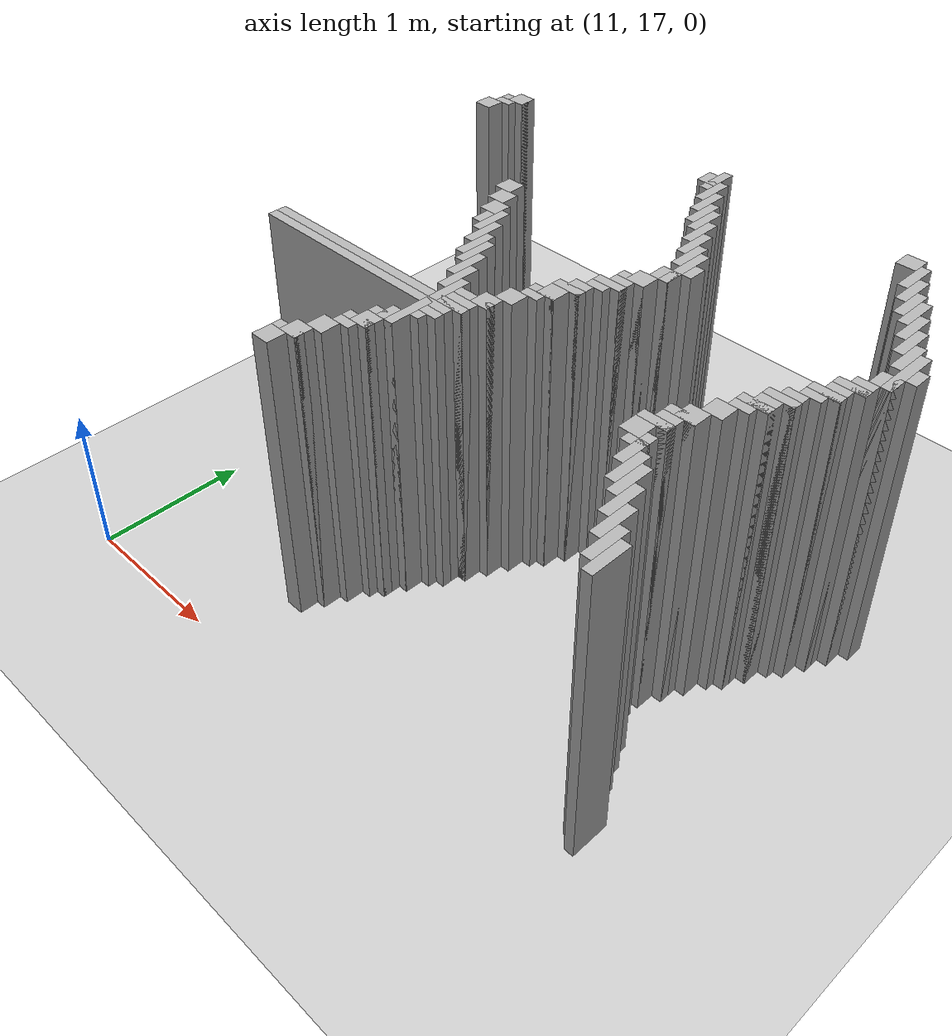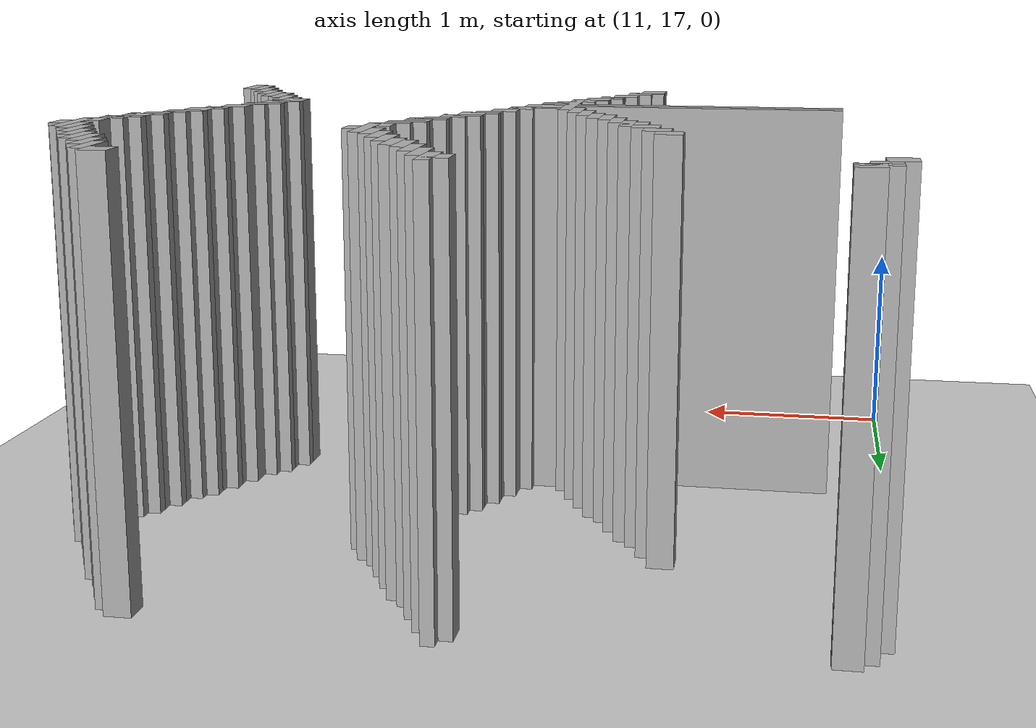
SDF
<sdf version="1.6">
 <world name="slam_world">
  <model name="ground_plane">
   <static>true</static>
   <link name="link">
    <collision name="collision">
     <geometry><plane><normal>0 0 1</normal><size>100 100</size></plane></geometry>
    </collision>
    <visual name="visual">
     <geometry><plane><normal>0 0 1</normal><size>100 100</size></plane></geometry>
     <material>
      <ambient>0.8 0.8 0.8 1</ambient>
      <diffuse>0.8 0.8 0.8 1</diffuse>
      <specular>0.8 0.8 0.8 1</specular>
     </material>
    </visual>
   </link>
  </model>
  <model name="wall_340">
   <static>true</static>
   <pose>12.925531914893616 20.5531914893617 1.0 0 0 0</pose>
   <link name="link">
    <collision name="collision">
     <geometry><box><size>0.06382978723404255 0.2553191489361702 2.0</size></box></geometry>
    </collision>
    <visual name="visual">
     <geometry><box><size>0.06382978723404255 0.2553191489361702 2.0</size></box></geometry>
     <material><ambient>0.5 0.5 0.5 1</ambient><diffuse>0.7 0.7 0.7 1</diffuse></material>
    </visual>
   </link>
  </model>
  <model name="wall_346">
   <static>true</static>
   <pose>11.234042553191488 20.5531914893617 1.0 0 0 0</pose>
   <link name="link">
    <collision name="collision">
     <geometry><box><size>0.1276595744680851 0.1276595744680851 2.0</size></box></geometry>
    </collision>
    <visual name="visual">
     <geometry><box><size>0.1276595744680851 0.1276595744680851 2.0</size></box></geometry>
     <material><ambient>0.5 0.5 0.5 1</ambient><diffuse>0.7 0.7 0.7 1</diffuse></material>
    </visual>
   </link>
  </model>
  <model name="wall_347">
   <static>true</static>
   <pose>12.893617021276595 20.5531914893617 1.0 0 0 0</pose>
   <link name="link">
    <collision name="collision">
     <geometry><box><size>0.1276595744680851 0.1276595744680851 2.0</size></box></geometry>
    </collision>
    <visual name="visual">
     <geometry><box><size>0.1276595744680851 0.1276595744680851 2.0</size></box></geometry>
     <material><ambient>0.5 0.5 0.5 1</ambient><diffuse>0.7 0.7 0.7 1</diffuse></material>
    </visual>
   </link>
  </model>
  <model name="wall_348">
   <static>true</static>
   <pose>14.297872340425531 20.5531914893617 1.0 0 0 0</pose>
   <link name="link">
    <collision name="collision">
     <geometry><box><size>0.1276595744680851 0.1276595744680851 2.0</size></box></geometry>
    </collision>
    <visual name="visual">
     <geometry><box><size>0.1276595744680851 0.1276595744680851 2.0</size></box></geometry>
     <material><ambient>0.5 0.5 0.5 1</ambient><diffuse>0.7 0.7 0.7 1</diffuse></material>
    </visual>
   </link>
  </model>
  <model name="wall_354">
   <static>true</static>
   <pose>11.202127659574467 20.52127659574468 1.0 0 0 0</pose>
   <link name="link">
    <collision name="collision">
     <geometry><box><size>0.19148936170212766 0.06382978723404255 2.0</size></box></geometry>
    </collision>
    <visual name="visual">
     <geometry><box><size>0.19148936170212766 0.06382978723404255 2.0</size></box></geometry>
     <material><ambient>0.5 0.5 0.5 1</ambient><diffuse>0.7 0.7 0.7 1</diffuse></material>
    </visual>
   </link>
  </model>
  <model name="wall_355">
   <static>true</static>
   <pose>12.989361702127658 20.425531914893615 1.0 0 0 0</pose>
   <link name="link">
    <collision name="collision">
     <geometry><box><size>0.06382978723404255 0.2553191489361702 2.0</size></box></geometry>
    </collision>
    <visual name="visual">
     <geometry><box><size>0.06382978723404255 0.2553191489361702 2.0</size></box></geometry>
     <material><ambient>0.5 0.5 0.5 1</ambient><diffuse>0.7 0.7 0.7 1</diffuse></material>
    </visual>
   </link>
  </model>
  <model name="wall_356">
   <static>true</static>
   <pose>14.393617021276595 20.425531914893615 1.0 0 0 0</pose>
   <link name="link">
    <collision name="collision">
     <geometry><box><size>0.06382978723404255 0.2553191489361702 2.0</size></box></geometry>
    </collision>
    <visual name="visual">
     <geometry><box><size>0.06382978723404255 0.2553191489361702 2.0</size></box></geometry>
     <material><ambient>0.5 0.5 0.5 1</ambient><diffuse>0.7 0.7 0.7 1</diffuse></material>
    </visual>
   </link>
  </model>
  <model name="wall_360">
   <static>true</static>
   <pose>11.170212765957446 20.457446808510635 1.0 0 0 0</pose>
   <link name="link">
    <collision name="collision">
     <geometry><box><size>0.1276595744680851 0.06382978723404255 2.0</size></box></geometry>
    </collision>
    <visual name="visual">
     <geometry><box><size>0.1276595744680851 0.06382978723404255 2.0</size></box></geometry>
     <material><ambient>0.5 0.5 0.5 1</ambient><diffuse>0.7 0.7 0.7 1</diffuse></material>
    </visual>
   </link>
  </model>
  <model name="wall_366">
   <static>true</static>
   <pose>11.106382978723403 20.361702127659573 1.0 0 0 0</pose>
   <link name="link">
    <collision name="collision">
     <geometry><box><size>0.1276595744680851 0.1276595744680851 2.0</size></box></geometry>
    </collision>
    <visual name="visual">
     <geometry><box><size>0.1276595744680851 0.1276595744680851 2.0</size></box></geometry>
     <material><ambient>0.5 0.5 0.5 1</ambient><diffuse>0.7 0.7 0.7 1</diffuse></material>
    </visual>
   </link>
  </model>
  <model name="wall_367">
   <static>true</static>
   <pose>13.053191489361701 20.29787234042553 1.0 0 0 0</pose>
   <link name="link">
    <collision name="collision">
     <geometry><box><size>0.06382978723404255 0.2553191489361702 2.0</size></box></geometry>
    </collision>
    <visual name="visual">
     <geometry><box><size>0.06382978723404255 0.2553191489361702 2.0</size></box></geometry>
     <material><ambient>0.5 0.5 0.5 1</ambient><diffuse>0.7 0.7 0.7 1</diffuse></material>
    </visual>
   </link>
  </model>
  <model name="wall_368">
   <static>true</static>
   <pose>14.457446808510637 20.29787234042553 1.0 0 0 0</pose>
   <link name="link">
    <collision name="collision">
     <geometry><box><size>0.06382978723404255 0.2553191489361702 2.0</size></box></geometry>
    </collision>
    <visual name="visual">
     <geometry><box><size>0.06382978723404255 0.2553191489361702 2.0</size></box></geometry>
     <material><ambient>0.5 0.5 0.5 1</ambient><diffuse>0.7 0.7 0.7 1</diffuse></material>
    </visual>
   </link>
  </model>
  <model name="wall_375">
   <static>true</static>
   <pose>13.117021276595743 20.170212765957444 1.0 0 0 0</pose>
   <link name="link">
    <collision name="collision">
     <geometry><box><size>0.06382978723404255 0.2553191489361702 2.0</size></box></geometry>
    </collision>
    <visual name="visual">
     <geometry><box><size>0.06382978723404255 0.2553191489361702 2.0</size></box></geometry>
     <material><ambient>0.5 0.5 0.5 1</ambient><diffuse>0.7 0.7 0.7 1</diffuse></material>
    </visual>
   </link>
  </model>
  <model name="wall_376">
   <static>true</static>
   <pose>14.52127659574468 20.170212765957444 1.0 0 0 0</pose>
   <link name="link">
    <collision name="collision">
     <geometry><box><size>0.06382978723404255 0.2553191489361702 2.0</size></box></geometry>
    </collision>
    <visual name="visual">
     <geometry><box><size>0.06382978723404255 0.2553191489361702 2.0</size></box></geometry>
     <material><ambient>0.5 0.5 0.5 1</ambient><diffuse>0.7 0.7 0.7 1</diffuse></material>
    </visual>
   </link>
  </model>
  <model name="wall_383">
   <static>true</static>
   <pose>13.180851063829786 20.106382978723403 1.0 0 0 0</pose>
   <link name="link">
    <collision name="collision">
     <geometry><box><size>0.06382978723404255 0.2553191489361702 2.0</size></box></geometry>
    </collision>
    <visual name="visual">
     <geometry><box><size>0.06382978723404255 0.2553191489361702 2.0</size></box></geometry>
     <material><ambient>0.5 0.5 0.5 1</ambient><diffuse>0.7 0.7 0.7 1</diffuse></material>
    </visual>
   </link>
  </model>
  <model name="wall_384">
   <static>true</static>
   <pose>14.585106382978722 20.106382978723403 1.0 0 0 0</pose>
   <link name="link">
    <collision name="collision">
     <geometry><box><size>0.06382978723404255 0.2553191489361702 2.0</size></box></geometry>
    </collision>
    <visual name="visual">
     <geometry><box><size>0.06382978723404255 0.2553191489361702 2.0</size></box></geometry>
     <material><ambient>0.5 0.5 0.5 1</ambient><diffuse>0.7 0.7 0.7 1</diffuse></material>
    </visual>
   </link>
  </model>
  <model name="wall_395">
   <static>true</static>
   <pose>13.244680851063828 19.978723404255316 1.0 0 0 0</pose>
   <link name="link">
    <collision name="collision">
     <geometry><box><size>0.06382978723404255 0.2553191489361702 2.0</size></box></geometry>
    </collision>
    <visual name="visual">
     <geometry><box><size>0.06382978723404255 0.2553191489361702 2.0</size></box></geometry>
     <material><ambient>0.5 0.5 0.5 1</ambient><diffuse>0.7 0.7 0.7 1</diffuse></material>
    </visual>
   </link>
  </model>
  <model name="wall_396">
   <static>true</static>
   <pose>14.648936170212766 19.978723404255316 1.0 0 0 0</pose>
   <link name="link">
    <collision name="collision">
     <geometry><box><size>0.06382978723404255 0.2553191489361702 2.0</size></box></geometry>
    </collision>
    <visual name="visual">
     <geometry><box><size>0.06382978723404255 0.2553191489361702 2.0</size></box></geometry>
     <material><ambient>0.5 0.5 0.5 1</ambient><diffuse>0.7 0.7 0.7 1</diffuse></material>
    </visual>
   </link>
  </model>
  <model name="wall_407">
   <static>true</static>
   <pose>13.308510638297872 19.851063829787233 1.0 0 0 0</pose>
   <link name="link">
    <collision name="collision">
     <geometry><box><size>0.06382978723404255 0.2553191489361702 2.0</size></box></geometry>
    </collision>
    <visual name="visual">
     <geometry><box><size>0.06382978723404255 0.2553191489361702 2.0</size></box></geometry>
     <material><ambient>0.5 0.5 0.5 1</ambient><diffuse>0.7 0.7 0.7 1</diffuse></material>
    </visual>
   </link>
  </model>
  <model name="wall_408">
   <static>true</static>
   <pose>14.712765957446807 19.851063829787233 1.0 0 0 0</pose>
   <link name="link">
    <collision name="collision">
     <geometry><box><size>0.06382978723404255 0.2553191489361702 2.0</size></box></geometry>
    </collision>
    <visual name="visual">
     <geometry><box><size>0.06382978723404255 0.2553191489361702 2.0</size></box></geometry>
     <material><ambient>0.5 0.5 0.5 1</ambient><diffuse>0.7 0.7 0.7 1</diffuse></material>
    </visual>
   </link>
  </model>
  <model name="wall_415">
   <static>true</static>
   <pose>13.372340425531913 19.723404255319146 1.0 0 0 0</pose>
   <link name="link">
    <collision name="collision">
     <geometry><box><size>0.06382978723404255 0.2553191489361702 2.0</size></box></geometry>
    </collision>
    <visual name="visual">
     <geometry><box><size>0.06382978723404255 0.2553191489361702 2.0</size></box></geometry>
     <material><ambient>0.5 0.5 0.5 1</ambient><diffuse>0.7 0.7 0.7 1</diffuse></material>
    </visual>
   </link>
  </model>
  <model name="wall_416">
   <static>true</static>
   <pose>14.77659574468085 19.723404255319146 1.0 0 0 0</pose>
   <link name="link">
    <collision name="collision">
     <geometry><box><size>0.06382978723404255 0.2553191489361702 2.0</size></box></geometry>
    </collision>
    <visual name="visual">
     <geometry><box><size>0.06382978723404255 0.2553191489361702 2.0</size></box></geometry>
     <material><ambient>0.5 0.5 0.5 1</ambient><diffuse>0.7 0.7 0.7 1</diffuse></material>
    </visual>
   </link>
  </model>
  <model name="wall_423">
   <static>true</static>
   <pose>13.436170212765957 19.595744680851062 1.0 0 0 0</pose>
   <link name="link">
    <collision name="collision">
     <geometry><box><size>0.06382978723404255 0.3829787234042553 2.0</size></box></geometry>
    </collision>
    <visual name="visual">
     <geometry><box><size>0.06382978723404255 0.3829787234042553 2.0</size></box></geometry>
     <material><ambient>0.5 0.5 0.5 1</ambient><diffuse>0.7 0.7 0.7 1</diffuse></material>
    </visual>
   </link>
  </model>
  <model name="wall_424">
   <static>true</static>
   <pose>14.840425531914892 19.595744680851062 1.0 0 0 0</pose>
   <link name="link">
    <collision name="collision">
     <geometry><box><size>0.06382978723404255 0.3829787234042553 2.0</size></box></geometry>
    </collision>
    <visual name="visual">
     <geometry><box><size>0.06382978723404255 0.3829787234042553 2.0</size></box></geometry>
     <material><ambient>0.5 0.5 0.5 1</ambient><diffuse>0.7 0.7 0.7 1</diffuse></material>
    </visual>
   </link>
  </model>
  <model name="wall_436">
   <static>true</static>
   <pose>12.063829787234042 19.595744680851062 1.0 0 0 0</pose>
   <link name="link">
    <collision name="collision">
     <geometry><box><size>0.1276595744680851 0.1276595744680851 2.0</size></box></geometry>
    </collision>
    <visual name="visual">
     <geometry><box><size>0.1276595744680851 0.1276595744680851 2.0</size></box></geometry>
     <material><ambient>0.5 0.5 0.5 1</ambient><diffuse>0.7 0.7 0.7 1</diffuse></material>
    </visual>
   </link>
  </model>
  <model name="wall_437">
   <static>true</static>
   <pose>13.499999999999998 19.595744680851062 1.0 0 0 0</pose>
   <link name="link">
    <collision name="collision">
     <geometry><box><size>0.06382978723404255 0.1276595744680851 2.0</size></box></geometry>
    </collision>
    <visual name="visual">
     <geometry><box><size>0.06382978723404255 0.1276595744680851 2.0</size></box></geometry>
     <material><ambient>0.5 0.5 0.5 1</ambient><diffuse>0.7 0.7 0.7 1</diffuse></material>
    </visual>
   </link>
  </model>
  <model name="wall_438">
   <static>true</static>
   <pose>14.904255319148936 19.595744680851062 1.0 0 0 0</pose>
   <link name="link">
    <collision name="collision">
     <geometry><box><size>0.06382978723404255 0.1276595744680851 2.0</size></box></geometry>
    </collision>
    <visual name="visual">
     <geometry><box><size>0.06382978723404255 0.1276595744680851 2.0</size></box></geometry>
     <material><ambient>0.5 0.5 0.5 1</ambient><diffuse>0.7 0.7 0.7 1</diffuse></material>
    </visual>
   </link>
  </model>
  <model name="wall_448">
   <static>true</static>
   <pose>12.127659574468083 19.468085106382976 1.0 0 0 0</pose>
   <link name="link">
    <collision name="collision">
     <geometry><box><size>0.1276595744680851 0.1276595744680851 2.0</size></box></geometry>
    </collision>
    <visual name="visual">
     <geometry><box><size>0.1276595744680851 0.1276595744680851 2.0</size></box></geometry>
     <material><ambient>0.5 0.5 0.5 1</ambient><diffuse>0.7 0.7 0.7 1</diffuse></material>
    </visual>
   </link>
  </model>
  <model name="wall_449">
   <static>true</static>
   <pose>13.404255319148936 19.468085106382976 1.0 0 0 0</pose>
   <link name="link">
    <collision name="collision">
     <geometry><box><size>0.1276595744680851 0.1276595744680851 2.0</size></box></geometry>
    </collision>
    <visual name="visual">
     <geometry><box><size>0.1276595744680851 0.1276595744680851 2.0</size></box></geometry>
     <material><ambient>0.5 0.5 0.5 1</ambient><diffuse>0.7 0.7 0.7 1</diffuse></material>
    </visual>
   </link>
  </model>
  <model name="wall_450">
   <static>true</static>
   <pose>14.808510638297872 19.468085106382976 1.0 0 0 0</pose>
   <link name="link">
    <collision name="collision">
     <geometry><box><size>0.1276595744680851 0.1276595744680851 2.0</size></box></geometry>
    </collision>
    <visual name="visual">
     <geometry><box><size>0.1276595744680851 0.1276595744680851 2.0</size></box></geometry>
     <material><ambient>0.5 0.5 0.5 1</ambient><diffuse>0.7 0.7 0.7 1</diffuse></material>
    </visual>
   </link>
  </model>
  <model name="wall_459">
   <static>true</static>
   <pose>12.191489361702127 19.340425531914892 1.0 0 0 0</pose>
   <link name="link">
    <collision name="collision">
     <geometry><box><size>0.1276595744680851 0.1276595744680851 2.0</size></box></geometry>
    </collision>
    <visual name="visual">
     <geometry><box><size>0.1276595744680851 0.1276595744680851 2.0</size></box></geometry>
     <material><ambient>0.5 0.5 0.5 1</ambient><diffuse>0.7 0.7 0.7 1</diffuse></material>
    </visual>
   </link>
  </model>
  <model name="wall_460">
   <static>true</static>
   <pose>13.340425531914892 19.340425531914892 1.0 0 0 0</pose>
   <link name="link">
    <collision name="collision">
     <geometry><box><size>0.1276595744680851 0.1276595744680851 2.0</size></box></geometry>
    </collision>
    <visual name="visual">
     <geometry><box><size>0.1276595744680851 0.1276595744680851 2.0</size></box></geometry>
     <material><ambient>0.5 0.5 0.5 1</ambient><diffuse>0.7 0.7 0.7 1</diffuse></material>
    </visual>
   </link>
  </model>
  <model name="wall_461">
   <static>true</static>
   <pose>14.744680851063828 19.340425531914892 1.0 0 0 0</pose>
   <link name="link">
    <collision name="collision">
     <geometry><box><size>0.1276595744680851 0.1276595744680851 2.0</size></box></geometry>
    </collision>
    <visual name="visual">
     <geometry><box><size>0.1276595744680851 0.1276595744680851 2.0</size></box></geometry>
     <material><ambient>0.5 0.5 0.5 1</ambient><diffuse>0.7 0.7 0.7 1</diffuse></material>
    </visual>
   </link>
  </model>
  <model name="wall_469">
   <static>true</static>
   <pose>12.287234042553191 19.212765957446805 1.0 0 0 0</pose>
   <link name="link">
    <collision name="collision">
     <geometry><box><size>0.06382978723404255 0.2553191489361702 2.0</size></box></geometry>
    </collision>
    <visual name="visual">
     <geometry><box><size>0.06382978723404255 0.2553191489361702 2.0</size></box></geometry>
     <material><ambient>0.5 0.5 0.5 1</ambient><diffuse>0.7 0.7 0.7 1</diffuse></material>
    </visual>
   </link>
  </model>
  <model name="wall_470">
   <static>true</static>
   <pose>13.308510638297872 19.30851063829787 1.0 0 0 0</pose>
   <link name="link">
    <collision name="collision">
     <geometry><box><size>0.19148936170212766 0.06382978723404255 2.0</size></box></geometry>
    </collision>
    <visual name="visual">
     <geometry><box><size>0.19148936170212766 0.06382978723404255 2.0</size></box></geometry>
     <material><ambient>0.5 0.5 0.5 1</ambient><diffuse>0.7 0.7 0.7 1</diffuse></material>
    </visual>
   </link>
  </model>
  <model name="wall_471">
   <static>true</static>
   <pose>14.712765957446807 19.30851063829787 1.0 0 0 0</pose>
   <link name="link">
    <collision name="collision">
     <geometry><box><size>0.19148936170212766 0.06382978723404255 2.0</size></box></geometry>
    </collision>
    <visual name="visual">
     <geometry><box><size>0.19148936170212766 0.06382978723404255 2.0</size></box></geometry>
     <material><ambient>0.5 0.5 0.5 1</ambient><diffuse>0.7 0.7 0.7 1</diffuse></material>
    </visual>
   </link>
  </model>
  <model name="wall_479">
   <static>true</static>
   <pose>12.25531914893617 19.212765957446805 1.0 0 0 0</pose>
   <link name="link">
    <collision name="collision">
     <geometry><box><size>0.1276595744680851 0.1276595744680851 2.0</size></box></geometry>
    </collision>
    <visual name="visual">
     <geometry><box><size>0.1276595744680851 0.1276595744680851 2.0</size></box></geometry>
     <material><ambient>0.5 0.5 0.5 1</ambient><diffuse>0.7 0.7 0.7 1</diffuse></material>
    </visual>
   </link>
  </model>
  <model name="wall_480">
   <static>true</static>
   <pose>13.27659574468085 19.212765957446805 1.0 0 0 0</pose>
   <link name="link">
    <collision name="collision">
     <geometry><box><size>0.1276595744680851 0.1276595744680851 2.0</size></box></geometry>
    </collision>
    <visual name="visual">
     <geometry><box><size>0.1276595744680851 0.1276595744680851 2.0</size></box></geometry>
     <material><ambient>0.5 0.5 0.5 1</ambient><diffuse>0.7 0.7 0.7 1</diffuse></material>
    </visual>
   </link>
  </model>
  <model name="wall_481">
   <static>true</static>
   <pose>14.680851063829786 19.212765957446805 1.0 0 0 0</pose>
   <link name="link">
    <collision name="collision">
     <geometry><box><size>0.1276595744680851 0.1276595744680851 2.0</size></box></geometry>
    </collision>
    <visual name="visual">
     <geometry><box><size>0.1276595744680851 0.1276595744680851 2.0</size></box></geometry>
     <material><ambient>0.5 0.5 0.5 1</ambient><diffuse>0.7 0.7 0.7 1</diffuse></material>
    </visual>
   </link>
  </model>
  <model name="wall_489">
   <static>true</static>
   <pose>12.351063829787233 19.085106382978722 1.0 0 0 0</pose>
   <link name="link">
    <collision name="collision">
     <geometry><box><size>0.06382978723404255 0.2553191489361702 2.0</size></box></geometry>
    </collision>
    <visual name="visual">
     <geometry><box><size>0.06382978723404255 0.2553191489361702 2.0</size></box></geometry>
     <material><ambient>0.5 0.5 0.5 1</ambient><diffuse>0.7 0.7 0.7 1</diffuse></material>
    </visual>
   </link>
  </model>
  <model name="wall_490">
   <static>true</static>
   <pose>13.244680851063828 19.180851063829785 1.0 0 0 0</pose>
   <link name="link">
    <collision name="collision">
     <geometry><box><size>0.19148936170212766 0.06382978723404255 2.0</size></box></geometry>
    </collision>
    <visual name="visual">
     <geometry><box><size>0.19148936170212766 0.06382978723404255 2.0</size></box></geometry>
     <material><ambient>0.5 0.5 0.5 1</ambient><diffuse>0.7 0.7 0.7 1</diffuse></material>
    </visual>
   </link>
  </model>
  <model name="wall_491">
   <static>true</static>
   <pose>14.648936170212766 19.180851063829785 1.0 0 0 0</pose>
   <link name="link">
    <collision name="collision">
     <geometry><box><size>0.19148936170212766 0.06382978723404255 2.0</size></box></geometry>
    </collision>
    <visual name="visual">
     <geometry><box><size>0.19148936170212766 0.06382978723404255 2.0</size></box></geometry>
     <material><ambient>0.5 0.5 0.5 1</ambient><diffuse>0.7 0.7 0.7 1</diffuse></material>
    </visual>
   </link>
  </model>
  <model name="wall_496">
   <static>true</static>
   <pose>13.212765957446807 19.117021276595743 1.0 0 0 0</pose>
   <link name="link">
    <collision name="collision">
     <geometry><box><size>0.1276595744680851 0.06382978723404255 2.0</size></box></geometry>
    </collision>
    <visual name="visual">
     <geometry><box><size>0.1276595744680851 0.06382978723404255 2.0</size></box></geometry>
     <material><ambient>0.5 0.5 0.5 1</ambient><diffuse>0.7 0.7 0.7 1</diffuse></material>
    </visual>
   </link>
  </model>
  <model name="wall_497">
   <static>true</static>
   <pose>14.617021276595743 19.117021276595743 1.0 0 0 0</pose>
   <link name="link">
    <collision name="collision">
     <geometry><box><size>0.1276595744680851 0.06382978723404255 2.0</size></box></geometry>
    </collision>
    <visual name="visual">
     <geometry><box><size>0.1276595744680851 0.06382978723404255 2.0</size></box></geometry>
     <material><ambient>0.5 0.5 0.5 1</ambient><diffuse>0.7 0.7 0.7 1</diffuse></material>
    </visual>
   </link>
  </model>
  <model name="wall_505">
   <static>true</static>
   <pose>12.414893617021276 18.957446808510635 1.0 0 0 0</pose>
   <link name="link">
    <collision name="collision">
     <geometry><box><size>0.06382978723404255 0.2553191489361702 2.0</size></box></geometry>
    </collision>
    <visual name="visual">
     <geometry><box><size>0.06382978723404255 0.2553191489361702 2.0</size></box></geometry>
     <material><ambient>0.5 0.5 0.5 1</ambient><diffuse>0.7 0.7 0.7 1</diffuse></material>
    </visual>
   </link>
  </model>
  <model name="wall_506">
   <static>true</static>
   <pose>13.148936170212766 19.02127659574468 1.0 0 0 0</pose>
   <link name="link">
    <collision name="collision">
     <geometry><box><size>0.1276595744680851 0.1276595744680851 2.0</size></box></geometry>
    </collision>
    <visual name="visual">
     <geometry><box><size>0.1276595744680851 0.1276595744680851 2.0</size></box></geometry>
     <material><ambient>0.5 0.5 0.5 1</ambient><diffuse>0.7 0.7 0.7 1</diffuse></material>
    </visual>
   </link>
  </model>
  <model name="wall_507">
   <static>true</static>
   <pose>14.553191489361701 19.02127659574468 1.0 0 0 0</pose>
   <link name="link">
    <collision name="collision">
     <geometry><box><size>0.1276595744680851 0.1276595744680851 2.0</size></box></geometry>
    </collision>
    <visual name="visual">
     <geometry><box><size>0.1276595744680851 0.1276595744680851 2.0</size></box></geometry>
     <material><ambient>0.5 0.5 0.5 1</ambient><diffuse>0.7 0.7 0.7 1</diffuse></material>
    </visual>
   </link>
  </model>
  <model name="wall_515">
   <static>true</static>
   <pose>12.478723404255318 18.893617021276594 1.0 0 0 0</pose>
   <link name="link">
    <collision name="collision">
     <geometry><box><size>0.06382978723404255 0.2553191489361702 2.0</size></box></geometry>
    </collision>
    <visual name="visual">
     <geometry><box><size>0.06382978723404255 0.2553191489361702 2.0</size></box></geometry>
     <material><ambient>0.5 0.5 0.5 1</ambient><diffuse>0.7 0.7 0.7 1</diffuse></material>
    </visual>
   </link>
  </model>
  <model name="wall_516">
   <static>true</static>
   <pose>13.117021276595743 18.98936170212766 1.0 0 0 0</pose>
   <link name="link">
    <collision name="collision">
     <geometry><box><size>0.19148936170212766 0.06382978723404255 2.0</size></box></geometry>
    </collision>
    <visual name="visual">
     <geometry><box><size>0.19148936170212766 0.06382978723404255 2.0</size></box></geometry>
     <material><ambient>0.5 0.5 0.5 1</ambient><diffuse>0.7 0.7 0.7 1</diffuse></material>
    </visual>
   </link>
  </model>
  <model name="wall_517">
   <static>true</static>
   <pose>14.52127659574468 18.98936170212766 1.0 0 0 0</pose>
   <link name="link">
    <collision name="collision">
     <geometry><box><size>0.19148936170212766 0.06382978723404255 2.0</size></box></geometry>
    </collision>
    <visual name="visual">
     <geometry><box><size>0.19148936170212766 0.06382978723404255 2.0</size></box></geometry>
     <material><ambient>0.5 0.5 0.5 1</ambient><diffuse>0.7 0.7 0.7 1</diffuse></material>
    </visual>
   </link>
  </model>
  <model name="wall_522">
   <static>true</static>
   <pose>13.085106382978722 18.893617021276594 1.0 0 0 0</pose>
   <link name="link">
    <collision name="collision">
     <geometry><box><size>0.1276595744680851 0.1276595744680851 2.0</size></box></geometry>
    </collision>
    <visual name="visual">
     <geometry><box><size>0.1276595744680851 0.1276595744680851 2.0</size></box></geometry>
     <material><ambient>0.5 0.5 0.5 1</ambient><diffuse>0.7 0.7 0.7 1</diffuse></material>
    </visual>
   </link>
  </model>
  <model name="wall_523">
   <static>true</static>
   <pose>14.489361702127658 18.893617021276594 1.0 0 0 0</pose>
   <link name="link">
    <collision name="collision">
     <geometry><box><size>0.1276595744680851 0.1276595744680851 2.0</size></box></geometry>
    </collision>
    <visual name="visual">
     <geometry><box><size>0.1276595744680851 0.1276595744680851 2.0</size></box></geometry>
     <material><ambient>0.5 0.5 0.5 1</ambient><diffuse>0.7 0.7 0.7 1</diffuse></material>
    </visual>
   </link>
  </model>
  <model name="wall_531">
   <static>true</static>
   <pose>12.542553191489361 18.76595744680851 1.0 0 0 0</pose>
   <link name="link">
    <collision name="collision">
     <geometry><box><size>0.06382978723404255 0.2553191489361702 2.0</size></box></geometry>
    </collision>
    <visual name="visual">
     <geometry><box><size>0.06382978723404255 0.2553191489361702 2.0</size></box></geometry>
     <material><ambient>0.5 0.5 0.5 1</ambient><diffuse>0.7 0.7 0.7 1</diffuse></material>
    </visual>
   </link>
  </model>
  <model name="wall_532">
   <static>true</static>
   <pose>13.053191489361701 18.861702127659573 1.0 0 0 0</pose>
   <link name="link">
    <collision name="collision">
     <geometry><box><size>0.19148936170212766 0.06382978723404255 2.0</size></box></geometry>
    </collision>
    <visual name="visual">
     <geometry><box><size>0.19148936170212766 0.06382978723404255 2.0</size></box></geometry>
     <material><ambient>0.5 0.5 0.5 1</ambient><diffuse>0.7 0.7 0.7 1</diffuse></material>
    </visual>
   </link>
  </model>
  <model name="wall_533">
   <static>true</static>
   <pose>14.457446808510637 18.861702127659573 1.0 0 0 0</pose>
   <link name="link">
    <collision name="collision">
     <geometry><box><size>0.19148936170212766 0.06382978723404255 2.0</size></box></geometry>
    </collision>
    <visual name="visual">
     <geometry><box><size>0.19148936170212766 0.06382978723404255 2.0</size></box></geometry>
     <material><ambient>0.5 0.5 0.5 1</ambient><diffuse>0.7 0.7 0.7 1</diffuse></material>
    </visual>
   </link>
  </model>
  <model name="wall_538">
   <static>true</static>
   <pose>13.02127659574468 18.79787234042553 1.0 0 0 0</pose>
   <link name="link">
    <collision name="collision">
     <geometry><box><size>0.1276595744680851 0.06382978723404255 2.0</size></box></geometry>
    </collision>
    <visual name="visual">
     <geometry><box><size>0.1276595744680851 0.06382978723404255 2.0</size></box></geometry>
     <material><ambient>0.5 0.5 0.5 1</ambient><diffuse>0.7 0.7 0.7 1</diffuse></material>
    </visual>
   </link>
  </model>
  <model name="wall_539">
   <static>true</static>
   <pose>14.425531914893616 18.79787234042553 1.0 0 0 0</pose>
   <link name="link">
    <collision name="collision">
     <geometry><box><size>0.1276595744680851 0.06382978723404255 2.0</size></box></geometry>
    </collision>
    <visual name="visual">
     <geometry><box><size>0.1276595744680851 0.06382978723404255 2.0</size></box></geometry>
     <material><ambient>0.5 0.5 0.5 1</ambient><diffuse>0.7 0.7 0.7 1</diffuse></material>
    </visual>
   </link>
  </model>
  <model name="wall_547">
   <static>true</static>
   <pose>12.606382978723403 18.638297872340424 1.0 0 0 0</pose>
   <link name="link">
    <collision name="collision">
     <geometry><box><size>0.06382978723404255 0.2553191489361702 2.0</size></box></geometry>
    </collision>
    <visual name="visual">
     <geometry><box><size>0.06382978723404255 0.2553191489361702 2.0</size></box></geometry>
     <material><ambient>0.5 0.5 0.5 1</ambient><diffuse>0.7 0.7 0.7 1</diffuse></material>
    </visual>
   </link>
  </model>
  <model name="wall_548">
   <static>true</static>
   <pose>12.957446808510637 18.702127659574465 1.0 0 0 0</pose>
   <link name="link">
    <collision name="collision">
     <geometry><box><size>0.1276595744680851 0.1276595744680851 2.0</size></box></geometry>
    </collision>
    <visual name="visual">
     <geometry><box><size>0.1276595744680851 0.1276595744680851 2.0</size></box></geometry>
     <material><ambient>0.5 0.5 0.5 1</ambient><diffuse>0.7 0.7 0.7 1</diffuse></material>
    </visual>
   </link>
  </model>
  <model name="wall_549">
   <static>true</static>
   <pose>14.361702127659573 18.702127659574465 1.0 0 0 0</pose>
   <link name="link">
    <collision name="collision">
     <geometry><box><size>0.1276595744680851 0.1276595744680851 2.0</size></box></geometry>
    </collision>
    <visual name="visual">
     <geometry><box><size>0.1276595744680851 0.1276595744680851 2.0</size></box></geometry>
     <material><ambient>0.5 0.5 0.5 1</ambient><diffuse>0.7 0.7 0.7 1</diffuse></material>
    </visual>
   </link>
  </model>
  <model name="wall_557">
   <static>true</static>
   <pose>12.670212765957446 18.351063829787233 1.0 0 0 0</pose>
   <link name="link">
    <collision name="collision">
     <geometry><box><size>0.06382978723404255 0.5744680851063829 2.0</size></box></geometry>
    </collision>
    <visual name="visual">
     <geometry><box><size>0.06382978723404255 0.5744680851063829 2.0</size></box></geometry>
     <material><ambient>0.5 0.5 0.5 1</ambient><diffuse>0.7 0.7 0.7 1</diffuse></material>
    </visual>
   </link>
  </model>
  <model name="wall_558">
   <static>true</static>
   <pose>12.893617021276595 18.574468085106382 1.0 0 0 0</pose>
   <link name="link">
    <collision name="collision">
     <geometry><box><size>0.1276595744680851 0.1276595744680851 2.0</size></box></geometry>
    </collision>
    <visual name="visual">
     <geometry><box><size>0.1276595744680851 0.1276595744680851 2.0</size></box></geometry>
     <material><ambient>0.5 0.5 0.5 1</ambient><diffuse>0.7 0.7 0.7 1</diffuse></material>
    </visual>
   </link>
  </model>
  <model name="wall_559">
   <static>true</static>
   <pose>14.297872340425531 18.574468085106382 1.0 0 0 0</pose>
   <link name="link">
    <collision name="collision">
     <geometry><box><size>0.1276595744680851 0.1276595744680851 2.0</size></box></geometry>
    </collision>
    <visual name="visual">
     <geometry><box><size>0.1276595744680851 0.1276595744680851 2.0</size></box></geometry>
     <material><ambient>0.5 0.5 0.5 1</ambient><diffuse>0.7 0.7 0.7 1</diffuse></material>
    </visual>
   </link>
  </model>
  <model name="wall_566">
   <static>true</static>
   <pose>12.829787234042552 18.54255319148936 1.0 0 0 0</pose>
   <link name="link">
    <collision name="collision">
     <geometry><box><size>0.2553191489361702 0.06382978723404255 2.0</size></box></geometry>
    </collision>
    <visual name="visual">
     <geometry><box><size>0.2553191489361702 0.06382978723404255 2.0</size></box></geometry>
     <material><ambient>0.5 0.5 0.5 1</ambient><diffuse>0.7 0.7 0.7 1</diffuse></material>
    </visual>
   </link>
  </model>
  <model name="wall_567">
   <static>true</static>
   <pose>14.265957446808509 18.54255319148936 1.0 0 0 0</pose>
   <link name="link">
    <collision name="collision">
     <geometry><box><size>0.19148936170212766 0.06382978723404255 2.0</size></box></geometry>
    </collision>
    <visual name="visual">
     <geometry><box><size>0.19148936170212766 0.06382978723404255 2.0</size></box></geometry>
     <material><ambient>0.5 0.5 0.5 1</ambient><diffuse>0.7 0.7 0.7 1</diffuse></material>
    </visual>
   </link>
  </model>
  <model name="wall_572">
   <static>true</static>
   <pose>12.797872340425531 18.446808510638295 1.0 0 0 0</pose>
   <link name="link">
    <collision name="collision">
     <geometry><box><size>0.19148936170212766 0.1276595744680851 2.0</size></box></geometry>
    </collision>
    <visual name="visual">
     <geometry><box><size>0.19148936170212766 0.1276595744680851 2.0</size></box></geometry>
     <material><ambient>0.5 0.5 0.5 1</ambient><diffuse>0.7 0.7 0.7 1</diffuse></material>
    </visual>
   </link>
  </model>
  <model name="wall_573">
   <static>true</static>
   <pose>14.234042553191488 18.446808510638295 1.0 0 0 0</pose>
   <link name="link">
    <collision name="collision">
     <geometry><box><size>0.1276595744680851 0.1276595744680851 2.0</size></box></geometry>
    </collision>
    <visual name="visual">
     <geometry><box><size>0.1276595744680851 0.1276595744680851 2.0</size></box></geometry>
     <material><ambient>0.5 0.5 0.5 1</ambient><diffuse>0.7 0.7 0.7 1</diffuse></material>
    </visual>
   </link>
  </model>
  <model name="wall_579">
   <static>true</static>
   <pose>12.095744680851062 18.414893617021274 1.0 0 0 0</pose>
   <link name="link">
    <collision name="collision">
     <geometry><box><size>1.5957446808510638 0.06382978723404255 2.0</size></box></geometry>
    </collision>
    <visual name="visual">
     <geometry><box><size>1.5957446808510638 0.06382978723404255 2.0</size></box></geometry>
     <material><ambient>0.5 0.5 0.5 1</ambient><diffuse>0.7 0.7 0.7 1</diffuse></material>
    </visual>
   </link>
  </model>
  <model name="wall_580">
   <static>true</static>
   <pose>14.202127659574467 18.414893617021274 1.0 0 0 0</pose>
   <link name="link">
    <collision name="collision">
     <geometry><box><size>0.19148936170212766 0.06382978723404255 2.0</size></box></geometry>
    </collision>
    <visual name="visual">
     <geometry><box><size>0.19148936170212766 0.06382978723404255 2.0</size></box></geometry>
     <material><ambient>0.5 0.5 0.5 1</ambient><diffuse>0.7 0.7 0.7 1</diffuse></material>
    </visual>
   </link>
  </model>
  <model name="wall_584">
   <static>true</static>
   <pose>12.063829787234042 18.351063829787233 1.0 0 0 0</pose>
   <link name="link">
    <collision name="collision">
     <geometry><box><size>1.5319148936170213 0.06382978723404255 2.0</size></box></geometry>
    </collision>
    <visual name="visual">
     <geometry><box><size>1.5319148936170213 0.06382978723404255 2.0</size></box></geometry>
     <material><ambient>0.5 0.5 0.5 1</ambient><diffuse>0.7 0.7 0.7 1</diffuse></material>
    </visual>
   </link>
  </model>
  <model name="wall_585">
   <static>true</static>
   <pose>14.170212765957446 18.319148936170212 1.0 0 0 0</pose>
   <link name="link">
    <collision name="collision">
     <geometry><box><size>0.1276595744680851 0.1276595744680851 2.0</size></box></geometry>
    </collision>
    <visual name="visual">
     <geometry><box><size>0.1276595744680851 0.1276595744680851 2.0</size></box></geometry>
     <material><ambient>0.5 0.5 0.5 1</ambient><diffuse>0.7 0.7 0.7 1</diffuse></material>
    </visual>
   </link>
  </model>
  <model name="wall_592">
   <static>true</static>
   <pose>12.76595744680851 18.28723404255319 1.0 0 0 0</pose>
   <link name="link">
    <collision name="collision">
     <geometry><box><size>0.1276595744680851 0.06382978723404255 2.0</size></box></geometry>
    </collision>
    <visual name="visual">
     <geometry><box><size>0.1276595744680851 0.06382978723404255 2.0</size></box></geometry>
     <material><ambient>0.5 0.5 0.5 1</ambient><diffuse>0.7 0.7 0.7 1</diffuse></material>
    </visual>
   </link>
  </model>
  <model name="wall_593">
   <static>true</static>
   <pose>14.265957446808509 18.191489361702125 1.0 0 0 0</pose>
   <link name="link">
    <collision name="collision">
     <geometry><box><size>0.06382978723404255 0.2553191489361702 2.0</size></box></geometry>
    </collision>
    <visual name="visual">
     <geometry><box><size>0.06382978723404255 0.2553191489361702 2.0</size></box></geometry>
     <material><ambient>0.5 0.5 0.5 1</ambient><diffuse>0.7 0.7 0.7 1</diffuse></material>
    </visual>
   </link>
  </model>
  <model name="wall_598">
   <static>true</static>
   <pose>12.734042553191488 18.223404255319146 1.0 0 0 0</pose>
   <link name="link">
    <collision name="collision">
     <geometry><box><size>0.06382978723404255 0.06382978723404255 2.0</size></box></geometry>
    </collision>
    <visual name="visual">
     <geometry><box><size>0.06382978723404255 0.06382978723404255 2.0</size></box></geometry>
     <material><ambient>0.5 0.5 0.5 1</ambient><diffuse>0.7 0.7 0.7 1</diffuse></material>
    </visual>
   </link>
  </model>
  <model name="wall_599">
   <static>true</static>
   <pose>14.234042553191488 18.223404255319146 1.0 0 0 0</pose>
   <link name="link">
    <collision name="collision">
     <geometry><box><size>0.1276595744680851 0.06382978723404255 2.0</size></box></geometry>
    </collision>
    <visual name="visual">
     <geometry><box><size>0.1276595744680851 0.06382978723404255 2.0</size></box></geometry>
     <material><ambient>0.5 0.5 0.5 1</ambient><diffuse>0.7 0.7 0.7 1</diffuse></material>
    </visual>
   </link>
  </model>
  <model name="wall_607">
   <static>true</static>
   <pose>12.638297872340425 18.127659574468083 1.0 0 0 0</pose>
   <link name="link">
    <collision name="collision">
     <geometry><box><size>0.1276595744680851 0.1276595744680851 2.0</size></box></geometry>
    </collision>
    <visual name="visual">
     <geometry><box><size>0.1276595744680851 0.1276595744680851 2.0</size></box></geometry>
     <material><ambient>0.5 0.5 0.5 1</ambient><diffuse>0.7 0.7 0.7 1</diffuse></material>
    </visual>
   </link>
  </model>
  <model name="wall_608">
   <static>true</static>
   <pose>14.329787234042552 18.06382978723404 1.0 0 0 0</pose>
   <link name="link">
    <collision name="collision">
     <geometry><box><size>0.06382978723404255 0.2553191489361702 2.0</size></box></geometry>
    </collision>
    <visual name="visual">
     <geometry><box><size>0.06382978723404255 0.2553191489361702 2.0</size></box></geometry>
     <material><ambient>0.5 0.5 0.5 1</ambient><diffuse>0.7 0.7 0.7 1</diffuse></material>
    </visual>
   </link>
  </model>
  <model name="wall_616">
   <static>true</static>
   <pose>12.606382978723403 18.095744680851062 1.0 0 0 0</pose>
   <link name="link">
    <collision name="collision">
     <geometry><box><size>0.19148936170212766 0.06382978723404255 2.0</size></box></geometry>
    </collision>
    <visual name="visual">
     <geometry><box><size>0.19148936170212766 0.06382978723404255 2.0</size></box></geometry>
     <material><ambient>0.5 0.5 0.5 1</ambient><diffuse>0.7 0.7 0.7 1</diffuse></material>
    </visual>
   </link>
  </model>
  <model name="wall_617">
   <static>true</static>
   <pose>14.393617021276595 18.0 1.0 0 0 0</pose>
   <link name="link">
    <collision name="collision">
     <geometry><box><size>0.06382978723404255 0.2553191489361702 2.0</size></box></geometry>
    </collision>
    <visual name="visual">
     <geometry><box><size>0.06382978723404255 0.2553191489361702 2.0</size></box></geometry>
     <material><ambient>0.5 0.5 0.5 1</ambient><diffuse>0.7 0.7 0.7 1</diffuse></material>
    </visual>
   </link>
  </model>
  <model name="wall_623">
   <static>true</static>
   <pose>12.574468085106382 18.0 1.0 0 0 0</pose>
   <link name="link">
    <collision name="collision">
     <geometry><box><size>0.1276595744680851 0.1276595744680851 2.0</size></box></geometry>
    </collision>
    <visual name="visual">
     <geometry><box><size>0.1276595744680851 0.1276595744680851 2.0</size></box></geometry>
     <material><ambient>0.5 0.5 0.5 1</ambient><diffuse>0.7 0.7 0.7 1</diffuse></material>
    </visual>
   </link>
  </model>
  <model name="wall_631">
   <static>true</static>
   <pose>12.542553191489361 17.968085106382976 1.0 0 0 0</pose>
   <link name="link">
    <collision name="collision">
     <geometry><box><size>0.19148936170212766 0.06382978723404255 2.0</size></box></geometry>
    </collision>
    <visual name="visual">
     <geometry><box><size>0.19148936170212766 0.06382978723404255 2.0</size></box></geometry>
     <material><ambient>0.5 0.5 0.5 1</ambient><diffuse>0.7 0.7 0.7 1</diffuse></material>
    </visual>
   </link>
  </model>
  <model name="wall_632">
   <static>true</static>
   <pose>14.457446808510637 17.872340425531913 1.0 0 0 0</pose>
   <link name="link">
    <collision name="collision">
     <geometry><box><size>0.06382978723404255 0.2553191489361702 2.0</size></box></geometry>
    </collision>
    <visual name="visual">
     <geometry><box><size>0.06382978723404255 0.2553191489361702 2.0</size></box></geometry>
     <material><ambient>0.5 0.5 0.5 1</ambient><diffuse>0.7 0.7 0.7 1</diffuse></material>
    </visual>
   </link>
  </model>
  <model name="wall_636">
   <static>true</static>
   <pose>12.51063829787234 17.904255319148934 1.0 0 0 0</pose>
   <link name="link">
    <collision name="collision">
     <geometry><box><size>0.1276595744680851 0.06382978723404255 2.0</size></box></geometry>
    </collision>
    <visual name="visual">
     <geometry><box><size>0.1276595744680851 0.06382978723404255 2.0</size></box></geometry>
     <material><ambient>0.5 0.5 0.5 1</ambient><diffuse>0.7 0.7 0.7 1</diffuse></material>
    </visual>
   </link>
  </model>
  <model name="wall_644">
   <static>true</static>
   <pose>12.446808510638297 17.80851063829787 1.0 0 0 0</pose>
   <link name="link">
    <collision name="collision">
     <geometry><box><size>0.1276595744680851 0.1276595744680851 2.0</size></box></geometry>
    </collision>
    <visual name="visual">
     <geometry><box><size>0.1276595744680851 0.1276595744680851 2.0</size></box></geometry>
     <material><ambient>0.5 0.5 0.5 1</ambient><diffuse>0.7 0.7 0.7 1</diffuse></material>
    </visual>
   </link>
  </model>
  <model name="wall_645">
   <static>true</static>
   <pose>14.52127659574468 17.74468085106383 1.0 0 0 0</pose>
   <link name="link">
    <collision name="collision">
     <geometry><box><size>0.06382978723404255 0.2553191489361702 2.0</size></box></geometry>
    </collision>
    <visual name="visual">
     <geometry><box><size>0.06382978723404255 0.2553191489361702 2.0</size></box></geometry>
     <material><ambient>0.5 0.5 0.5 1</ambient><diffuse>0.7 0.7 0.7 1</diffuse></material>
    </visual>
   </link>
  </model>
  <model name="wall_653">
   <static>true</static>
   <pose>12.382978723404255 17.680851063829785 1.0 0 0 0</pose>
   <link name="link">
    <collision name="collision">
     <geometry><box><size>0.1276595744680851 0.1276595744680851 2.0</size></box></geometry>
    </collision>
    <visual name="visual">
     <geometry><box><size>0.1276595744680851 0.1276595744680851 2.0</size></box></geometry>
     <material><ambient>0.5 0.5 0.5 1</ambient><diffuse>0.7 0.7 0.7 1</diffuse></material>
    </visual>
   </link>
  </model>
  <model name="wall_654">
   <static>true</static>
   <pose>14.585106382978722 17.617021276595743 1.0 0 0 0</pose>
   <link name="link">
    <collision name="collision">
     <geometry><box><size>0.06382978723404255 0.2553191489361702 2.0</size></box></geometry>
    </collision>
    <visual name="visual">
     <geometry><box><size>0.06382978723404255 0.2553191489361702 2.0</size></box></geometry>
     <material><ambient>0.5 0.5 0.5 1</ambient><diffuse>0.7 0.7 0.7 1</diffuse></material>
    </visual>
   </link>
  </model>
  <model name="wall_662">
   <static>true</static>
   <pose>12.351063829787233 17.648936170212764 1.0 0 0 0</pose>
   <link name="link">
    <collision name="collision">
     <geometry><box><size>0.19148936170212766 0.06382978723404255 2.0</size></box></geometry>
    </collision>
    <visual name="visual">
     <geometry><box><size>0.19148936170212766 0.06382978723404255 2.0</size></box></geometry>
     <material><ambient>0.5 0.5 0.5 1</ambient><diffuse>0.7 0.7 0.7 1</diffuse></material>
    </visual>
   </link>
  </model>
  <model name="wall_663">
   <static>true</static>
   <pose>14.648936170212766 17.5531914893617 1.0 0 0 0</pose>
   <link name="link">
    <collision name="collision">
     <geometry><box><size>0.06382978723404255 0.2553191489361702 2.0</size></box></geometry>
    </collision>
    <visual name="visual">
     <geometry><box><size>0.06382978723404255 0.2553191489361702 2.0</size></box></geometry>
     <material><ambient>0.5 0.5 0.5 1</ambient><diffuse>0.7 0.7 0.7 1</diffuse></material>
    </visual>
   </link>
  </model>
  <model name="wall_667">
   <static>true</static>
   <pose>12.319148936170212 17.5531914893617 1.0 0 0 0</pose>
   <link name="link">
    <collision name="collision">
     <geometry><box><size>0.1276595744680851 0.1276595744680851 2.0</size></box></geometry>
    </collision>
    <visual name="visual">
     <geometry><box><size>0.1276595744680851 0.1276595744680851 2.0</size></box></geometry>
     <material><ambient>0.5 0.5 0.5 1</ambient><diffuse>0.7 0.7 0.7 1</diffuse></material>
    </visual>
   </link>
  </model>
 </world>
</sdf>
